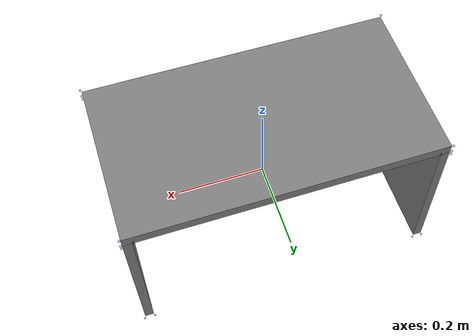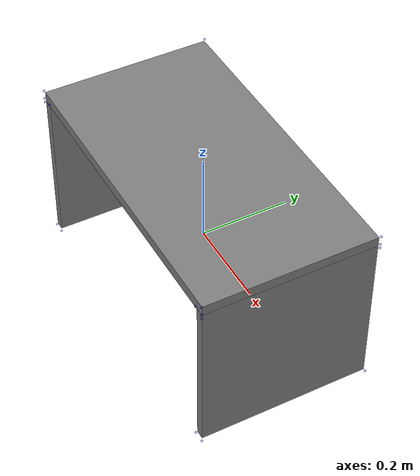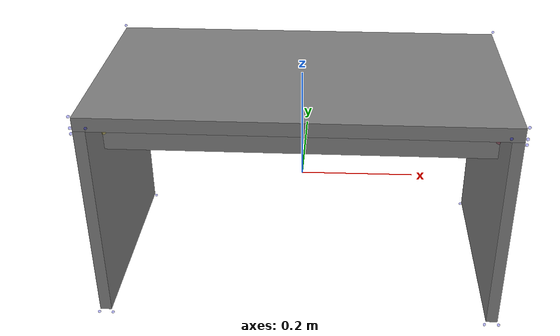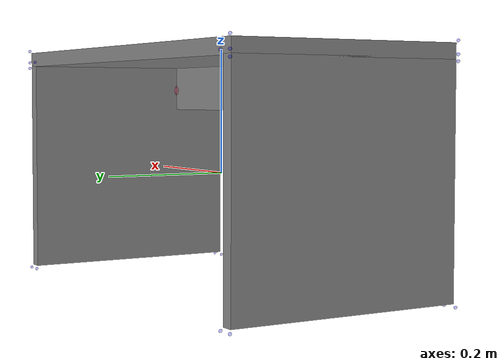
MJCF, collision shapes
<mujoco model="desk_mikael_1064">
    <custom>
        <numeric data="0.681998 -0.053785 0.00997 0.0 -0.707107 0.0 0.707107" name="1_part1_initpos"/>
        <numeric data="-0.524391 -0.031642 0.010073 -0.000762 -0.707106 0.000762 -0.707106" name="0_part0_initpos"/>
        <numeric data="0.079033 -0.044954 0.01197 0.0 -0.999892 0.014681 -0.0" name="3_part3_initpos"/>
        <numeric data="0.069886 0.284708 0.00597 0.707105 -0.707105 0.001478 -0.001478" name="2_part2_initpos"/>
    </custom>
    <asset>
        <mesh file="desk_mikael_1064/drawer.stl" name="drawer" scale="0.0005 0.0005 0.0005"/>
        <mesh file="desk_mikael_1064/leftplane.stl" name="leftplane" scale="0.0005 0.0005 0.0005"/>
        <mesh file="desk_mikael_1064/rightplane.stl" name="rightplane" scale="0.0005 0.0005 0.0005"/>
        <mesh file="desk_mikael_1064/topplane.stl" name="topplane" scale="0.0005 0.0005 0.0005"/>
        <texture file="../textures/light-wood.png" name="tex-light-wood" type="2d"/>
        <material name="pencil-wood" reflectance="0.5" texrepeat="20 20" texture="tex-light-wood" texuniform="true"/>
    </asset>
    <equality>
        <weld active="false" body1="0_part0" body2="3_part3" solimp="1 1 0.5" solref="0.01 0.3"/>
        <weld active="false" body1="1_part1" body2="3_part3" solimp="1 1 0.5" solref="0.01 0.3"/>
        <weld active="false" body1="2_part2" body2="3_part3" solimp="1 1 0.5" solref="0.01 0.3"/>
        <weld active="false" body1="0_part0" body2="2_part2" solimp="1 1 0.5" solref="0.01 0.3"/>
        <weld active="false" body1="1_part1" body2="2_part2" solimp="1 1 0.5" solref="0.01 0.3"/>
    </equality>
    <worldbody>
        <body name="1_part1" pos="0.34 0.0 0.0">
            <geom conaffinity="0" contype="0" density="0" material="pencil-wood" mesh="leftplane" name="1_part1_geom"
                  pos="0 0 0" rgba="0.82 0.71 0.55 1" solref="0.001 1" type="mesh"/>
            <geom density="100" name="noviz_collision_1_part1_geom" pos="0 0 0" size="0.01 0.19 0.18" solref="0.001 1"
                  type="box"/>
            <site name="leftplane-drawer,0,180,conn_site" pos="-0.01 -0.1 0.135" quat="0.707 0 -0.707 0"
                  rgba="0.9019 0.0980 0.2941 0.3" size="0.01"/>
            <site name="leftplane-topplane,0,conn_site" pos="0.0 0.0 0.185" rgba="0.2352 0.7058 0.2941 0.3"
                  size="0.01"/>
            <site name="1_part1_bottom_site" pos="0.0 0.0 -0.18" rgba="0 0 1 0" size="0.005"/>
            <site name="1_part1_top_site" pos="0.0 0.0 0.18" rgba="0 0 1 0" size="0.005"/>
            <site name="1_part1_horizontal_radius_site" pos="0.0 0.0 0.0" rgba="0 0 1 0" size="0.1"/>
            <site name="1_part1_corner_site1" pos="0.0125 -0.192 -0.185" rgba="0 0 1 0.3" size="0.0025"/>
            <site name="1_part1_corner_site2" pos="0.0125 0.1925 -0.185" rgba="0 0 1 0.3" size="0.0025"/>
            <site name="1_part1_corner_site3" pos="0.0125 -0.192 0.185" rgba="0 0 1 0.3" size="0.0025"/>
            <site name="1_part1_corner_site4" pos="0.0125 0.1925 0.185" rgba="0 0 1 0.3" size="0.0025"/>
            <site name="1_part1_corner_site5" pos="-0.012 -0.192 -0.185" rgba="0 0 1 0.3" size="0.0025"/>
            <site name="1_part1_corner_site6" pos="-0.012 0.1925 -0.185" rgba="0 0 1 0.3" size="0.0025"/>
            <site name="1_part1_corner_site7" pos="-0.012 -0.192 0.185" rgba="0 0 1 0.3" size="0.0025"/>
            <site name="1_part1_corner_site8" pos="-0.012 0.1925 0.185" rgba="0 0 1 0.3" size="0.0025"/>
        </body>
        <body name="0_part0" pos="-0.34 0.0 0.0">
            <geom conaffinity="0" contype="0" density="0" material="pencil-wood" mesh="rightplane" name="0_part0_geom"
                  pos="0 0 0" rgba="0.82 0.71 0.55 1" solref="0.001 1" type="mesh"/>
            <geom density="100" name="noviz_collision_0_part0_geom" pos="0 0 0" size="0.01 0.19 0.18" solref="0.001 1"
                  type="box"/>
            <site name="rightplane-drawer,0,180,conn_site" pos="0.01 -0.1 0.135" quat="0.707 0 -0.707 0"
                  rgba="1.0 0.8823 0.0980 0.3" size="0.01"/>
            <site name="rightplane-topplane,0,conn_site" pos="0.0 0.0 0.185" rgba="0.2627 0.3882 0.8470 0.3"
                  size="0.01"/>
            <site name="0_part0_bottom_site" pos="0.0 0.0 -0.18" rgba="0 0 1 0" size="0.005"/>
            <site name="0_part0_top_site" pos="0.0 0.0 0.18" rgba="0 0 1 0" size="0.005"/>
            <site name="0_part0_horizontal_radius_site" pos="0.0 0.0 0.0" rgba="0 0 1 0" size="0.1"/>
            <site name="0_part0_corner_site1" pos="0.0125 -0.192 -0.185" rgba="0 0 1 0.3" size="0.0025"/>
            <site name="0_part0_corner_site2" pos="0.0125 0.1925 -0.185" rgba="0 0 1 0.3" size="0.0025"/>
            <site name="0_part0_corner_site3" pos="0.0125 -0.192 0.185" rgba="0 0 1 0.3" size="0.0025"/>
            <site name="0_part0_corner_site4" pos="0.0125 0.1925 0.185" rgba="0 0 1 0.3" size="0.0025"/>
            <site name="0_part0_corner_site5" pos="-0.012 -0.192 -0.185" rgba="0 0 1 0.3" size="0.0025"/>
            <site name="0_part0_corner_site6" pos="-0.012 0.1925 -0.185" rgba="0 0 1 0.3" size="0.0025"/>
            <site name="0_part0_corner_site7" pos="-0.012 -0.192 0.185" rgba="0 0 1 0.3" size="0.0025"/>
            <site name="0_part0_corner_site8" pos="-0.012 0.1925 0.185" rgba="0 0 1 0.3" size="0.0025"/>
        </body>
        <body name="3_part3" pos="0.0 0.0 0.19">
            <geom conaffinity="0" contype="0" density="0" material="pencil-wood" mesh="topplane" name="3_part3_geom"
                  pos="0 0 0" rgba="0.82 0.71 0.55 0" solref="0.001 1" type="mesh"/>
            <geom density="100" name="noviz_collision_3_part3_geom" pos="0 0 0" size="0.35 0.19 0.012" solref="0.001 1"
                  type="box"/>
            <site name="topplane-rightplane,0,conn_site" pos="-0.34 0.0 -0.015" rgba="0.2627 0.3882 0.8470 0.3"
                  size="0.01"/>
            <site name="topplane-leftplane,0,conn_site" pos="0.34 0.0 -0.015" rgba="0.2352 0.7058 0.2941 0.3"
                  size="0.01"/>
            <site name="3_part3_bottom_site" pos="-0.34 0.0 0.0" rgba="0 0 1 0" size="0.005"/>
            <site name="3_part3_top_site" pos="0.34 0.0 0.0" rgba="0 0 1 0" size="0.005"/>
            <site name="3_part3_horizontal_radius_site" pos="0.0 0.0 0.0" rgba="0 0 1 0" size="0.2"/>
            <site name="3_part3_corner_site1" pos="-0.352 0.1925 0.015" rgba="0 0 1 0.3" size="0.0025"/>
            <site name="3_part3_corner_site2" pos="-0.352 -0.192 0.015" rgba="0 0 1 0.3" size="0.0025"/>
            <site name="3_part3_corner_site3" pos="0.3525 0.1925 0.015" rgba="0 0 1 0.3" size="0.0025"/>
            <site name="3_part3_corner_site4" pos="0.3525 -0.192 0.015" rgba="0 0 1 0.3" size="0.0025"/>
            <site name="3_part3_corner_site5" pos="-0.352 0.1925 -0.015" rgba="0 0 1 0.3" size="0.0025"/>
            <site name="3_part3_corner_site6" pos="-0.352 -0.192 -0.015" rgba="0 0 1 0.3" size="0.0025"/>
            <site name="3_part3_corner_site7" pos="0.3525 0.1925 -0.015" rgba="0 0 1 0.3" size="0.0025"/>
            <site name="3_part3_corner_site8" pos="0.3525 -0.192 -0.015" rgba="0 0 1 0.3" size="0.0025"/>
        </body>
        <body name="2_part2" pos="0.0 -0.1 0.14">
            <geom conaffinity="0" contype="0" density="0" material="pencil-wood" mesh="drawer" name="2_part2_geom"
                  pos="0 0 0" rgba="0.82 0.71 0.55 1" solref="0.001 1" type="mesh"/>
            <geom density="100" name="noviz_collision_2_part2_geom" pos="0 0 0" size="0.33 0.006 0.04" solref="0.001 1"
                  type="box"/>
            <site name="drawer-rightplane,0,180,conn_site" pos="-0.335 0.0 0.0" quat="0.707 0 -0.707 0"
                  rgba="1.0 0.8823 0.0980 0.3" size="0.01"/>
            <site name="drawer-leftplane,0,180,conn_site" pos="0.335 0.0 0.0" quat="0.707 0 -0.707 0"
                  rgba="0.9019 0.0980 0.2941 0.3" size="0.01"/>
            <site name="2_part2_bottom_site" pos="-0.35 0.0 0.0" rgba="0 0 1 0" size="0.005"/>
            <site name="2_part2_top_site" pos="0.35 0.0 0.0" rgba="0 0 1 0" size="0.005"/>
            <site name="2_part2_horizontal_radius_site" pos="0.0 0.0 0.0" rgba="0 0 1 0" size="0.1"/>
            <site name="2_part2_corner_site1" pos="-0.335 -0.01 0.045" rgba="0 0 1 0.3" size="0.0025"/>
            <site name="2_part2_corner_site2" pos="-0.335 -0.01 -0.045" rgba="0 0 1 0.3" size="0.0025"/>
            <site name="2_part2_corner_site3" pos="-0.335 0.01 0.045" rgba="0 0 1 0.3" size="0.0025"/>
            <site name="2_part2_corner_site4" pos="-0.335 0.01 -0.045" rgba="0 0 1 0.3" size="0.0025"/>
            <site name="2_part2_corner_site5" pos="0.335 -0.01 0.045" rgba="0 0 1 0.3" size="0.0025"/>
            <site name="2_part2_corner_site6" pos="0.335 -0.01 -0.045" rgba="0 0 1 0.3" size="0.0025"/>
            <site name="2_part2_corner_site7" pos="0.335 0.01 0.045" rgba="0 0 1 0.3" size="0.0025"/>
            <site name="2_part2_corner_site8" pos="0.335 0.01 -0.045" rgba="0 0 1 0.3" size="0.0025"/>
        </body>
    </worldbody>
    <actuator/>
    <sensor/>
    <contact/>
    <default/>
</mujoco>
